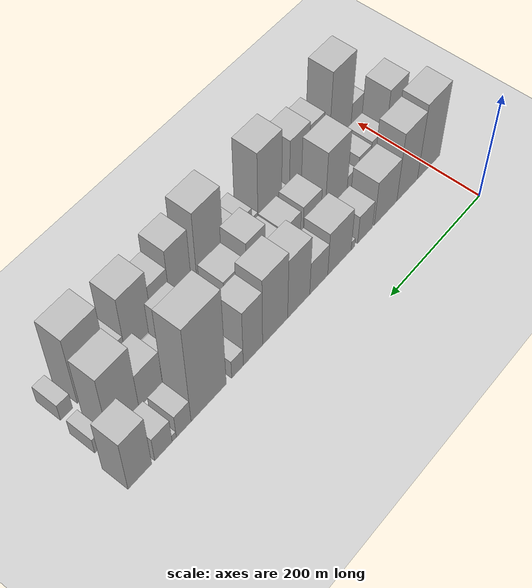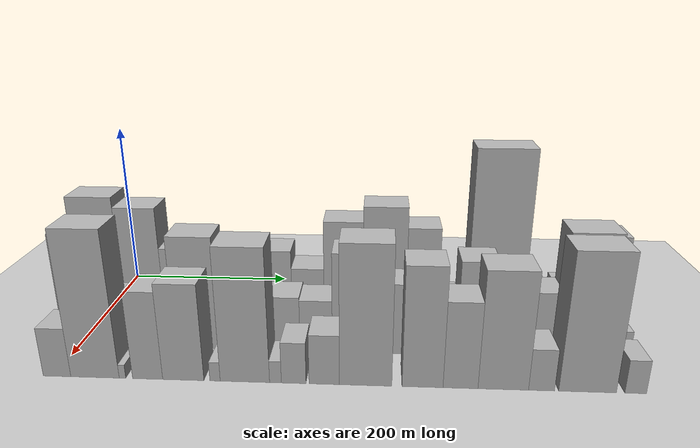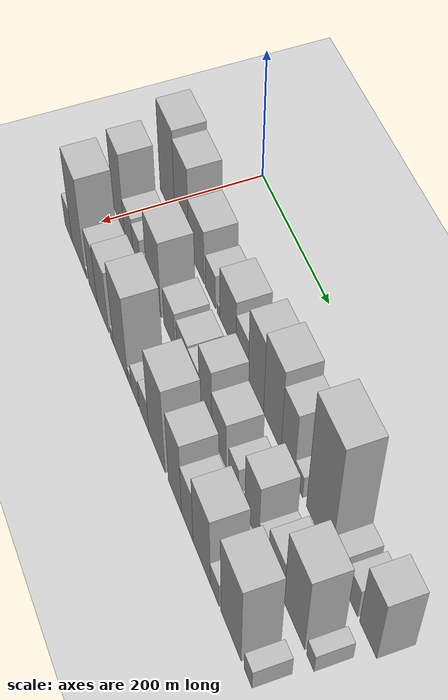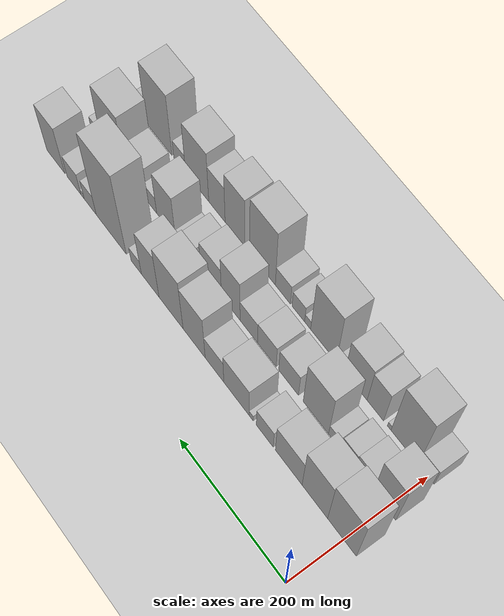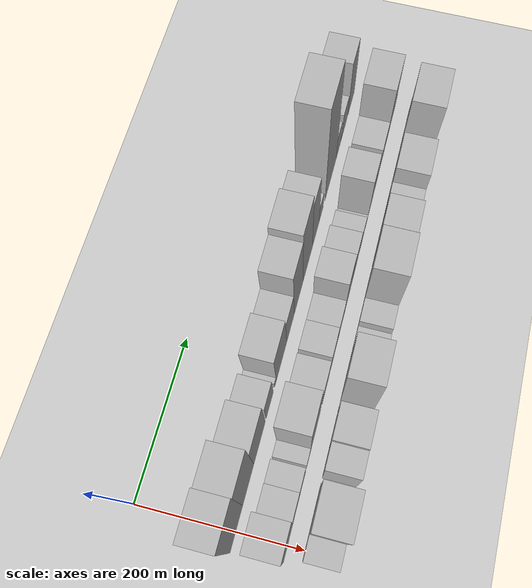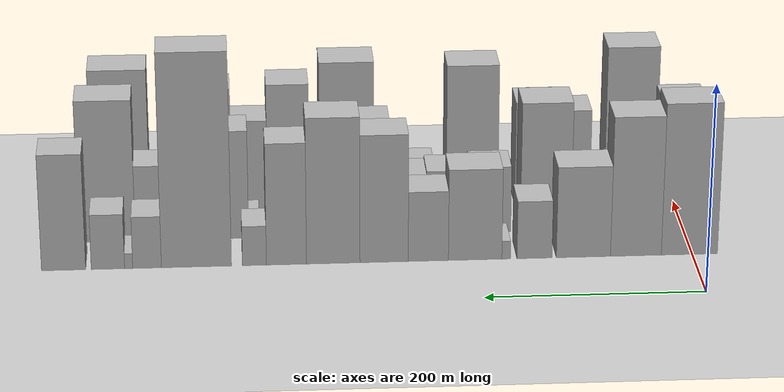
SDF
<sdf version="1.6">
 <world name="default">
  <include>
   <name>ground_plane_2</name>
   <uri>model://HANNAS_ground_plane</uri>
   <pose>100 0 0  0 0 0</pose>
  </include>
  <model name="building_16">
   <static>1</static>
   <pose>100.0000 3.0537 0 0.000000 0.000000 0.000000</pose>
   <link name="link">
    <pose>0 0 75.00 0 0 0</pose>
    <collision name="collision"><geometry><box><size>40.0000 52.0484 150.0000</size></box></geometry></collision>
    <visual name="visual">
     <cast_shadows>0</cast_shadows>
     <geometry><box><size>40.0000 52.0484 150.0000</size></box></geometry>
     <material>
      <script>
       <uri>model://HANNAS_wall/materials/scripts</uri>
       <uri>model://HANNAS_wall/materials/textures</uri>
       <name>vrc/HANNAS_wall</name>
      </script>
     </material>
    </visual>
   </link>
  </model>
  <model name="building_17">
   <static>1</static>
   <pose>100.0000 52.6405 0 0.000000 0.000000 0.000000</pose>
   <link name="link">
    <pose>0 0 69.00 0 0 0</pose>
    <collision name="collision"><geometry><box><size>40.0000 47.1252 138.0000</size></box></geometry></collision>
    <visual name="visual">
     <cast_shadows>0</cast_shadows>
     <geometry><box><size>40.0000 47.1252 138.0000</size></box></geometry>
     <material>
      <script>
       <uri>model://HANNAS_wall/materials/scripts</uri>
       <uri>model://HANNAS_wall/materials/textures</uri>
       <name>vrc/HANNAS_wall</name>
      </script>
     </material>
    </visual>
   </link>
  </model>
  <model name="building_18">
   <static>1</static>
   <pose>100.0000 101.2322 0 0.000000 0.000000 0.000000</pose>
   <link name="link">
    <pose>0 0 45.00 0 0 0</pose>
    <collision name="collision"><geometry><box><size>40.0000 50.0583 90.0000</size></box></geometry></collision>
    <visual name="visual">
     <cast_shadows>0</cast_shadows>
     <geometry><box><size>40.0000 50.0583 90.0000</size></box></geometry>
     <material>
      <script>
       <uri>model://HANNAS_wall/materials/scripts</uri>
       <uri>model://HANNAS_wall/materials/textures</uri>
       <name>vrc/HANNAS_wall</name>
      </script>
     </material>
    </visual>
   </link>
  </model>
  <model name="building_19">
   <static>1</static>
   <pose>100.0000 146.4236 0 0.000000 0.000000 0.000000</pose>
   <link name="link">
    <pose>0 0 28.50 0 0 0</pose>
    <collision name="collision"><geometry><box><size>40.0000 32.3245 57.0000</size></box></geometry></collision>
    <visual name="visual">
     <cast_shadows>0</cast_shadows>
     <geometry><box><size>40.0000 32.3245 57.0000</size></box></geometry>
     <material>
      <script>
       <uri>model://HANNAS_wall/materials/scripts</uri>
       <uri>model://HANNAS_wall/materials/textures</uri>
       <name>vrc/HANNAS_wall</name>
      </script>
     </material>
    </visual>
   </link>
  </model>
  <model name="building_20">
   <static>1</static>
   <pose>100.0000 172.5480 0 0.000000 0.000000 0.000000</pose>
   <link name="link">
    <pose>0 0 9.00 0 0 0</pose>
    <collision name="collision"><geometry><box><size>40.0000 7.9243 18.0000</size></box></geometry></collision>
    <visual name="visual">
     <cast_shadows>0</cast_shadows>
     <geometry><box><size>40.0000 7.9243 18.0000</size></box></geometry>
     <material>
      <script>
       <uri>model://HANNAS_wall/materials/scripts</uri>
       <uri>model://HANNAS_wall/materials/textures</uri>
       <name>vrc/HANNAS_wall</name>
      </script>
     </material>
    </visual>
   </link>
  </model>
  <model name="building_21">
   <static>1</static>
   <pose>100.0000 201.1346 0 0.000000 0.000000 0.000000</pose>
   <link name="link">
    <pose>0 0 45.00 0 0 0</pose>
    <collision name="collision"><geometry><box><size>40.0000 49.2489 90.0000</size></box></geometry></collision>
    <visual name="visual">
     <cast_shadows>0</cast_shadows>
     <geometry><box><size>40.0000 49.2489 90.0000</size></box></geometry>
     <material>
      <script>
       <uri>model://HANNAS_wall/materials/scripts</uri>
       <uri>model://HANNAS_wall/materials/textures</uri>
       <name>vrc/HANNAS_wall</name>
      </script>
     </material>
    </visual>
   </link>
  </model>
  <model name="building_22">
   <static>1</static>
   <pose>100.0000 244.1999 0 0.000000 0.000000 0.000000</pose>
   <link name="link">
    <pose>0 0 34.50 0 0 0</pose>
    <collision name="collision"><geometry><box><size>40.0000 36.8816 69.0000</size></box></geometry></collision>
    <visual name="visual">
     <cast_shadows>0</cast_shadows>
     <geometry><box><size>40.0000 36.8816 69.0000</size></box></geometry>
     <material>
      <script>
       <uri>model://HANNAS_wall/materials/scripts</uri>
       <uri>model://HANNAS_wall/materials/textures</uri>
       <name>vrc/HANNAS_wall</name>
      </script>
     </material>
    </visual>
   </link>
  </model>
  <model name="building_23">
   <static>1</static>
   <pose>100.0000 284.8170 0 0.000000 0.000000 0.000000</pose>
   <link name="link">
    <pose>0 0 63.00 0 0 0</pose>
    <collision name="collision"><geometry><box><size>40.0000 44.3525 126.0000</size></box></geometry></collision>
    <visual name="visual">
     <cast_shadows>0</cast_shadows>
     <geometry><box><size>40.0000 44.3525 126.0000</size></box></geometry>
     <material>
      <script>
       <uri>model://HANNAS_wall/materials/scripts</uri>
       <uri>model://HANNAS_wall/materials/textures</uri>
       <name>vrc/HANNAS_wall</name>
      </script>
     </material>
    </visual>
   </link>
  </model>
  <model name="building_24">
   <static>1</static>
   <pose>100.0000 331.4982 0 0.000000 0.000000 0.000000</pose>
   <link name="link">
    <pose>0 0 72.00 0 0 0</pose>
    <collision name="collision"><geometry><box><size>40.0000 49.0100 144.0000</size></box></geometry></collision>
    <visual name="visual">
     <cast_shadows>0</cast_shadows>
     <geometry><box><size>40.0000 49.0100 144.0000</size></box></geometry>
     <material>
      <script>
       <uri>model://HANNAS_wall/materials/scripts</uri>
       <uri>model://HANNAS_wall/materials/textures</uri>
       <name>vrc/HANNAS_wall</name>
      </script>
     </material>
    </visual>
   </link>
  </model>
  <model name="building_25">
   <static>1</static>
   <pose>100.0000 374.3059 0 0.000000 0.000000 0.000000</pose>
   <link name="link">
    <pose>0 0 60.00 0 0 0</pose>
    <collision name="collision"><geometry><box><size>40.0000 36.6054 120.0000</size></box></geometry></collision>
    <visual name="visual">
     <cast_shadows>0</cast_shadows>
     <geometry><box><size>40.0000 36.6054 120.0000</size></box></geometry>
     <material>
      <script>
       <uri>model://HANNAS_wall/materials/scripts</uri>
       <uri>model://HANNAS_wall/materials/textures</uri>
       <name>vrc/HANNAS_wall</name>
      </script>
     </material>
    </visual>
   </link>
  </model>
  <model name="building_26">
   <static>1</static>
   <pose>100.0000 403.5594 0 0.000000 0.000000 0.000000</pose>
   <link name="link">
    <pose>0 0 19.50 0 0 0</pose>
    <collision name="collision"><geometry><box><size>40.0000 21.9015 39.0000</size></box></geometry></collision>
    <visual name="visual">
     <cast_shadows>0</cast_shadows>
     <geometry><box><size>40.0000 21.9015 39.0000</size></box></geometry>
     <material>
      <script>
       <uri>model://HANNAS_wall/materials/scripts</uri>
       <uri>model://HANNAS_wall/materials/textures</uri>
       <name>vrc/HANNAS_wall</name>
      </script>
     </material>
    </visual>
   </link>
  </model>
  <model name="building_27">
   <static>1</static>
   <pose>100.0000 456.4815 0 0.000000 0.000000 0.000000</pose>
   <link name="link">
    <pose>0 0 105.00 0 0 0</pose>
    <collision name="collision"><geometry><box><size>40.0000 63.9427 210.0000</size></box></geometry></collision>
    <visual name="visual">
     <cast_shadows>0</cast_shadows>
     <geometry><box><size>40.0000 63.9427 210.0000</size></box></geometry>
     <material>
      <script>
       <uri>model://HANNAS_wall/materials/scripts</uri>
       <uri>model://HANNAS_wall/materials/textures</uri>
       <name>vrc/HANNAS_wall</name>
      </script>
     </material>
    </visual>
   </link>
  </model>
  <model name="building_28">
   <static>1</static>
   <pose>100.0000 501.5119 0 0.000000 0.000000 0.000000</pose>
   <link name="link">
    <pose>0 0 25.50 0 0 0</pose>
    <collision name="collision"><geometry><box><size>40.0000 26.1181 51.0000</size></box></geometry></collision>
    <visual name="visual">
     <cast_shadows>0</cast_shadows>
     <geometry><box><size>40.0000 26.1181 51.0000</size></box></geometry>
     <material>
      <script>
       <uri>model://HANNAS_wall/materials/scripts</uri>
       <uri>model://HANNAS_wall/materials/textures</uri>
       <name>vrc/HANNAS_wall</name>
      </script>
     </material>
    </visual>
   </link>
  </model>
  <model name="building_29">
   <static>1</static>
   <pose>100.0000 518.2382 0 0.000000 0.000000 0.000000</pose>
   <link name="link">
    <pose>0 0 7.50 0 0 0</pose>
    <collision name="collision"><geometry><box><size>40.0000 7.3345 15.0000</size></box></geometry></collision>
    <visual name="visual">
     <cast_shadows>0</cast_shadows>
     <geometry><box><size>40.0000 7.3345 15.0000</size></box></geometry>
     <material>
      <script>
       <uri>model://HANNAS_wall/materials/scripts</uri>
       <uri>model://HANNAS_wall/materials/textures</uri>
       <name>vrc/HANNAS_wall</name>
      </script>
     </material>
    </visual>
   </link>
  </model>
  <model name="building_30">
   <static>1</static>
   <pose>100.0000 537.0584 0 0.000000 0.000000 0.000000</pose>
   <link name="link">
    <pose>0 0 27.00 0 0 0</pose>
    <collision name="collision"><geometry><box><size>40.0000 30.3059 54.0000</size></box></geometry></collision>
    <visual name="visual">
     <cast_shadows>0</cast_shadows>
     <geometry><box><size>40.0000 30.3059 54.0000</size></box></geometry>
     <material>
      <script>
       <uri>model://HANNAS_wall/materials/scripts</uri>
       <uri>model://HANNAS_wall/materials/textures</uri>
       <name>vrc/HANNAS_wall</name>
      </script>
     </material>
    </visual>
   </link>
  </model>
  <model name="building_31">
   <static>1</static>
   <pose>100.0000 577.2599 0 0.000000 0.000000 0.000000</pose>
   <link name="link">
    <pose>0 0 57.00 0 0 0</pose>
    <collision name="collision"><geometry><box><size>40.0000 40.0972 114.0000</size></box></geometry></collision>
    <visual name="visual">
     <cast_shadows>0</cast_shadows>
     <geometry><box><size>40.0000 40.0972 114.0000</size></box></geometry>
     <material>
      <script>
       <uri>model://HANNAS_wall/materials/scripts</uri>
       <uri>model://HANNAS_wall/materials/textures</uri>
       <name>vrc/HANNAS_wall</name>
      </script>
     </material>
    </visual>
   </link>
  </model>
  <model name="building_50">
   <static>1</static>
   <pose>160.0000 2.9034 0 0.000000 0.000000 0.000000</pose>
   <link name="link">
    <pose>0 0 64.50 0 0 0</pose>
    <collision name="collision"><geometry><box><size>40.0000 40.4911 129.0000</size></box></geometry></collision>
    <visual name="visual">
     <cast_shadows>0</cast_shadows>
     <geometry><box><size>40.0000 40.4911 129.0000</size></box></geometry>
     <material>
      <script>
       <uri>model://HANNAS_wall/materials/scripts</uri>
       <uri>model://HANNAS_wall/materials/textures</uri>
       <name>vrc/HANNAS_wall</name>
      </script>
     </material>
    </visual>
   </link>
  </model>
  <model name="building_51">
   <static>1</static>
   <pose>160.0000 39.2276 0 0.000000 0.000000 0.000000</pose>
   <link name="link">
    <pose>0 0 28.50 0 0 0</pose>
    <collision name="collision"><geometry><box><size>40.0000 32.1573 57.0000</size></box></geometry></collision>
    <visual name="visual">
     <cast_shadows>0</cast_shadows>
     <geometry><box><size>40.0000 32.1573 57.0000</size></box></geometry>
     <material>
      <script>
       <uri>model://HANNAS_wall/materials/scripts</uri>
       <uri>model://HANNAS_wall/materials/textures</uri>
       <name>vrc/HANNAS_wall</name>
      </script>
     </material>
    </visual>
   </link>
  </model>
  <model name="building_52">
   <static>1</static>
   <pose>160.0000 68.7765 0 0.000000 0.000000 0.000000</pose>
   <link name="link">
    <pose>0 0 25.50 0 0 0</pose>
    <collision name="collision"><geometry><box><size>40.0000 26.9407 51.0000</size></box></geometry></collision>
    <visual name="visual">
     <cast_shadows>0</cast_shadows>
     <geometry><box><size>40.0000 26.9407 51.0000</size></box></geometry>
     <material>
      <script>
       <uri>model://HANNAS_wall/materials/scripts</uri>
       <uri>model://HANNAS_wall/materials/textures</uri>
       <name>vrc/HANNAS_wall</name>
      </script>
     </material>
    </visual>
   </link>
  </model>
  <model name="building_53">
   <static>1</static>
   <pose>160.0000 95.9330 0 0.000000 0.000000 0.000000</pose>
   <link name="link">
    <pose>0 0 16.50 0 0 0</pose>
    <collision name="collision"><geometry><box><size>40.0000 19.3723 33.0000</size></box></geometry></collision>
    <visual name="visual">
     <cast_shadows>0</cast_shadows>
     <geometry><box><size>40.0000 19.3723 33.0000</size></box></geometry>
     <material>
      <script>
       <uri>model://HANNAS_wall/materials/scripts</uri>
       <uri>model://HANNAS_wall/materials/textures</uri>
       <name>vrc/HANNAS_wall</name>
      </script>
     </material>
    </visual>
   </link>
  </model>
  <model name="building_54">
   <static>1</static>
   <pose>160.0000 129.4834 0 0.000000 0.000000 0.000000</pose>
   <link name="link">
    <pose>0 0 64.50 0 0 0</pose>
    <collision name="collision"><geometry><box><size>40.0000 47.7286 129.0000</size></box></geometry></collision>
    <visual name="visual">
     <cast_shadows>0</cast_shadows>
     <geometry><box><size>40.0000 47.7286 129.0000</size></box></geometry>
     <material>
      <script>
       <uri>model://HANNAS_wall/materials/scripts</uri>
       <uri>model://HANNAS_wall/materials/textures</uri>
       <name>vrc/HANNAS_wall</name>
      </script>
     </material>
    </visual>
   </link>
  </model>
  <model name="building_55">
   <static>1</static>
   <pose>160.0000 181.3222 0 0.000000 0.000000 0.000000</pose>
   <link name="link">
    <pose>0 0 33.00 0 0 0</pose>
    <collision name="collision"><geometry><box><size>40.0000 37.9489 66.0000</size></box></geometry></collision>
    <visual name="visual">
     <cast_shadows>0</cast_shadows>
     <geometry><box><size>40.0000 37.9489 66.0000</size></box></geometry>
     <material>
      <script>
       <uri>model://HANNAS_wall/materials/scripts</uri>
       <uri>model://HANNAS_wall/materials/textures</uri>
       <name>vrc/HANNAS_wall</name>
      </script>
     </material>
    </visual>
   </link>
  </model>
  <model name="building_56">
   <static>1</static>
   <pose>160.0000 223.4283 0 0.000000 0.000000 0.000000</pose>
   <link name="link">
    <pose>0 0 31.50 0 0 0</pose>
    <collision name="collision"><geometry><box><size>40.0000 36.2633 63.0000</size></box></geometry></collision>
    <visual name="visual">
     <cast_shadows>0</cast_shadows>
     <geometry><box><size>40.0000 36.2633 63.0000</size></box></geometry>
     <material>
      <script>
       <uri>model://HANNAS_wall/materials/scripts</uri>
       <uri>model://HANNAS_wall/materials/textures</uri>
       <name>vrc/HANNAS_wall</name>
      </script>
     </material>
    </visual>
   </link>
  </model>
  <model name="building_57">
   <static>1</static>
   <pose>160.0000 258.8193 0 0.000000 0.000000 0.000000</pose>
   <link name="link">
    <pose>0 0 30.00 0 0 0</pose>
    <collision name="collision"><geometry><box><size>40.0000 34.5187 60.0000</size></box></geometry></collision>
    <visual name="visual">
     <cast_shadows>0</cast_shadows>
     <geometry><box><size>40.0000 34.5187 60.0000</size></box></geometry>
     <material>
      <script>
       <uri>model://HANNAS_wall/materials/scripts</uri>
       <uri>model://HANNAS_wall/materials/textures</uri>
       <name>vrc/HANNAS_wall</name>
      </script>
     </material>
    </visual>
   </link>
  </model>
  <model name="building_58">
   <static>1</static>
   <pose>160.0000 294.6101 0 0.000000 0.000000 0.000000</pose>
   <link name="link">
    <pose>0 0 57.00 0 0 0</pose>
    <collision name="collision"><geometry><box><size>40.0000 37.0631 114.0000</size></box></geometry></collision>
    <visual name="visual">
     <cast_shadows>0</cast_shadows>
     <geometry><box><size>40.0000 37.0631 114.0000</size></box></geometry>
     <material>
      <script>
       <uri>model://HANNAS_wall/materials/scripts</uri>
       <uri>model://HANNAS_wall/materials/textures</uri>
       <name>vrc/HANNAS_wall</name>
      </script>
     </material>
    </visual>
   </link>
  </model>
  <model name="building_59">
   <static>1</static>
   <pose>160.0000 334.3508 0 0.000000 0.000000 0.000000</pose>
   <link name="link">
    <pose>0 0 40.50 0 0 0</pose>
    <collision name="collision"><geometry><box><size>40.0000 42.4183 81.0000</size></box></geometry></collision>
    <visual name="visual">
     <cast_shadows>0</cast_shadows>
     <geometry><box><size>40.0000 42.4183 81.0000</size></box></geometry>
     <material>
      <script>
       <uri>model://HANNAS_wall/materials/scripts</uri>
       <uri>model://HANNAS_wall/materials/textures</uri>
       <name>vrc/HANNAS_wall</name>
      </script>
     </material>
    </visual>
   </link>
  </model>
  <model name="building_60">
   <static>1</static>
   <pose>160.0000 376.4585 0 0.000000 0.000000 0.000000</pose>
   <link name="link">
    <pose>0 0 25.50 0 0 0</pose>
    <collision name="collision"><geometry><box><size>40.0000 27.7969 51.0000</size></box></geometry></collision>
    <visual name="visual">
     <cast_shadows>0</cast_shadows>
     <geometry><box><size>40.0000 27.7969 51.0000</size></box></geometry>
     <material>
      <script>
       <uri>model://HANNAS_wall/materials/scripts</uri>
       <uri>model://HANNAS_wall/materials/textures</uri>
       <name>vrc/HANNAS_wall</name>
      </script>
     </material>
    </visual>
   </link>
  </model>
  <model name="building_61">
   <static>1</static>
   <pose>160.0000 402.5462 0 0.000000 0.000000 0.000000</pose>
   <link name="link">
    <pose>0 0 10.50 0 0 0</pose>
    <collision name="collision"><geometry><box><size>40.0000 10.3786 21.0000</size></box></geometry></collision>
    <visual name="visual">
     <cast_shadows>0</cast_shadows>
     <geometry><box><size>40.0000 10.3786 21.0000</size></box></geometry>
     <material>
      <script>
       <uri>model://HANNAS_wall/materials/scripts</uri>
       <uri>model://HANNAS_wall/materials/textures</uri>
       <name>vrc/HANNAS_wall</name>
      </script>
     </material>
    </visual>
   </link>
  </model>
  <model name="building_62">
   <static>1</static>
   <pose>160.0000 427.2625 0 0.000000 0.000000 0.000000</pose>
   <link name="link">
    <pose>0 0 54.00 0 0 0</pose>
    <collision name="collision"><geometry><box><size>40.0000 39.0540 108.0000</size></box></geometry></collision>
    <visual name="visual">
     <cast_shadows>0</cast_shadows>
     <geometry><box><size>40.0000 39.0540 108.0000</size></box></geometry>
     <material>
      <script>
       <uri>model://HANNAS_wall/materials/scripts</uri>
       <uri>model://HANNAS_wall/materials/textures</uri>
       <name>vrc/HANNAS_wall</name>
      </script>
     </material>
    </visual>
   </link>
  </model>
  <model name="building_63">
   <static>1</static>
   <pose>160.0000 459.2107 0 0.000000 0.000000 0.000000</pose>
   <link name="link">
    <pose>0 0 21.00 0 0 0</pose>
    <collision name="collision"><geometry><box><size>40.0000 24.8425 42.0000</size></box></geometry></collision>
    <visual name="visual">
     <cast_shadows>0</cast_shadows>
     <geometry><box><size>40.0000 24.8425 42.0000</size></box></geometry>
     <material>
      <script>
       <uri>model://HANNAS_wall/materials/scripts</uri>
       <uri>model://HANNAS_wall/materials/textures</uri>
       <name>vrc/HANNAS_wall</name>
      </script>
     </material>
    </visual>
   </link>
  </model>
  <model name="building_64">
   <static>1</static>
   <pose>160.0000 492.3948 0 0.000000 0.000000 0.000000</pose>
   <link name="link">
    <pose>0 0 37.50 0 0 0</pose>
    <collision name="collision"><geometry><box><size>40.0000 41.5257 75.0000</size></box></geometry></collision>
    <visual name="visual">
     <cast_shadows>0</cast_shadows>
     <geometry><box><size>40.0000 41.5257 75.0000</size></box></geometry>
     <material>
      <script>
       <uri>model://HANNAS_wall/materials/scripts</uri>
       <uri>model://HANNAS_wall/materials/textures</uri>
       <name>vrc/HANNAS_wall</name>
      </script>
     </material>
    </visual>
   </link>
  </model>
  <model name="building_65">
   <static>1</static>
   <pose>160.0000 539.2618 0 0.000000 0.000000 0.000000</pose>
   <link name="link">
    <pose>0 0 70.50 0 0 0</pose>
    <collision name="collision"><geometry><box><size>40.0000 52.2082 141.0000</size></box></geometry></collision>
    <visual name="visual">
     <cast_shadows>0</cast_shadows>
     <geometry><box><size>40.0000 52.2082 141.0000</size></box></geometry>
     <material>
      <script>
       <uri>model://HANNAS_wall/materials/scripts</uri>
       <uri>model://HANNAS_wall/materials/textures</uri>
       <name>vrc/HANNAS_wall</name>
      </script>
     </material>
    </visual>
   </link>
  </model>
  <model name="building_66">
   <static>1</static>
   <pose>160.0000 579.4118 0 0.000000 0.000000 0.000000</pose>
   <link name="link">
    <pose>0 0 16.50 0 0 0</pose>
    <collision name="collision"><geometry><box><size>40.0000 18.0917 33.0000</size></box></geometry></collision>
    <visual name="visual">
     <cast_shadows>0</cast_shadows>
     <geometry><box><size>40.0000 18.0917 33.0000</size></box></geometry>
     <material>
      <script>
       <uri>model://HANNAS_wall/materials/scripts</uri>
       <uri>model://HANNAS_wall/materials/textures</uri>
       <name>vrc/HANNAS_wall</name>
      </script>
     </material>
    </visual>
   </link>
  </model>
  <model name="building_84">
   <static>1</static>
   <pose>220.0000 3.2790 0 0.000000 0.000000 0.000000</pose>
   <link name="link">
    <pose>0 0 27.00 0 0 0</pose>
    <collision name="collision"><geometry><box><size>40.0000 28.3241 54.0000</size></box></geometry></collision>
    <visual name="visual">
     <cast_shadows>0</cast_shadows>
     <geometry><box><size>40.0000 28.3241 54.0000</size></box></geometry>
     <material>
      <script>
       <uri>model://HANNAS_wall/materials/scripts</uri>
       <uri>model://HANNAS_wall/materials/textures</uri>
       <name>vrc/HANNAS_wall</name>
      </script>
     </material>
    </visual>
   </link>
  </model>
  <model name="building_85">
   <static>1</static>
   <pose>220.0000 42.1496 0 0.000000 0.000000 0.000000</pose>
   <link name="link">
    <pose>0 0 79.50 0 0 0</pose>
    <collision name="collision"><geometry><box><size>40.0000 49.4169 159.0000</size></box></geometry></collision>
    <visual name="visual">
     <cast_shadows>0</cast_shadows>
     <geometry><box><size>40.0000 49.4169 159.0000</size></box></geometry>
     <material>
      <script>
       <uri>model://HANNAS_wall/materials/scripts</uri>
       <uri>model://HANNAS_wall/materials/textures</uri>
       <name>vrc/HANNAS_wall</name>
      </script>
     </material>
    </visual>
   </link>
  </model>
  <model name="building_86">
   <static>1</static>
   <pose>220.0000 70.1875 0 0.000000 0.000000 0.000000</pose>
   <link name="link">
    <pose>0 0 7.50 0 0 0</pose>
    <collision name="collision"><geometry><box><size>40.0000 6.6591 15.0000</size></box></geometry></collision>
    <visual name="visual">
     <cast_shadows>0</cast_shadows>
     <geometry><box><size>40.0000 6.6591 15.0000</size></box></geometry>
     <material>
      <script>
       <uri>model://HANNAS_wall/materials/scripts</uri>
       <uri>model://HANNAS_wall/materials/textures</uri>
       <name>vrc/HANNAS_wall</name>
      </script>
     </material>
    </visual>
   </link>
  </model>
  <model name="building_87">
   <static>1</static>
   <pose>220.0000 95.7562 0 0.000000 0.000000 0.000000</pose>
   <link name="link">
    <pose>0 0 48.00 0 0 0</pose>
    <collision name="collision"><geometry><box><size>40.0000 30.4783 96.0000</size></box></geometry></collision>
    <visual name="visual">
     <cast_shadows>0</cast_shadows>
     <geometry><box><size>40.0000 30.4783 96.0000</size></box></geometry>
     <material>
      <script>
       <uri>model://HANNAS_wall/materials/scripts</uri>
       <uri>model://HANNAS_wall/materials/textures</uri>
       <name>vrc/HANNAS_wall</name>
      </script>
     </material>
    </visual>
   </link>
  </model>
  <model name="building_88">
   <static>1</static>
   <pose>220.0000 131.7616 0 0.000000 0.000000 0.000000</pose>
   <link name="link">
    <pose>0 0 52.50 0 0 0</pose>
    <collision name="collision"><geometry><box><size>40.0000 41.5324 105.0000</size></box></geometry></collision>
    <visual name="visual">
     <cast_shadows>0</cast_shadows>
     <geometry><box><size>40.0000 41.5324 105.0000</size></box></geometry>
     <material>
      <script>
       <uri>model://HANNAS_wall/materials/scripts</uri>
       <uri>model://HANNAS_wall/materials/textures</uri>
       <name>vrc/HANNAS_wall</name>
      </script>
     </material>
    </visual>
   </link>
  </model>
  <model name="building_89">
   <static>1</static>
   <pose>220.0000 163.7137 0 0.000000 0.000000 0.000000</pose>
   <link name="link">
    <pose>0 0 10.50 0 0 0</pose>
    <collision name="collision"><geometry><box><size>40.0000 10.3719 21.0000</size></box></geometry></collision>
    <visual name="visual">
     <cast_shadows>0</cast_shadows>
     <geometry><box><size>40.0000 10.3719 21.0000</size></box></geometry>
     <material>
      <script>
       <uri>model://HANNAS_wall/materials/scripts</uri>
       <uri>model://HANNAS_wall/materials/textures</uri>
       <name>vrc/HANNAS_wall</name>
      </script>
     </material>
    </visual>
   </link>
  </model>
  <model name="building_90">
   <static>1</static>
   <pose>220.0000 193.5635 0 0.000000 0.000000 0.000000</pose>
   <link name="link">
    <pose>0 0 72.00 0 0 0</pose>
    <collision name="collision"><geometry><box><size>40.0000 49.3276 144.0000</size></box></geometry></collision>
    <visual name="visual">
     <cast_shadows>0</cast_shadows>
     <geometry><box><size>40.0000 49.3276 144.0000</size></box></geometry>
     <material>
      <script>
       <uri>model://HANNAS_wall/materials/scripts</uri>
       <uri>model://HANNAS_wall/materials/textures</uri>
       <name>vrc/HANNAS_wall</name>
      </script>
     </material>
    </visual>
   </link>
  </model>
  <model name="building_91">
   <static>1</static>
   <pose>220.0000 224.0850 0 0.000000 0.000000 0.000000</pose>
   <link name="link">
    <pose>0 0 12.00 0 0 0</pose>
    <collision name="collision"><geometry><box><size>40.0000 11.7154 24.0000</size></box></geometry></collision>
    <visual name="visual">
     <cast_shadows>0</cast_shadows>
     <geometry><box><size>40.0000 11.7154 24.0000</size></box></geometry>
     <material>
      <script>
       <uri>model://HANNAS_wall/materials/scripts</uri>
       <uri>model://HANNAS_wall/materials/textures</uri>
       <name>vrc/HANNAS_wall</name>
      </script>
     </material>
    </visual>
   </link>
  </model>
  <model name="building_92">
   <static>1</static>
   <pose>220.0000 242.1766 0 0.000000 0.000000 0.000000</pose>
   <link name="link">
    <pose>0 0 22.50 0 0 0</pose>
    <collision name="collision"><geometry><box><size>40.0000 24.4677 45.0000</size></box></geometry></collision>
    <visual name="visual">
     <cast_shadows>0</cast_shadows>
     <geometry><box><size>40.0000 24.4677 45.0000</size></box></geometry>
     <material>
      <script>
       <uri>model://HANNAS_wall/materials/scripts</uri>
       <uri>model://HANNAS_wall/materials/textures</uri>
       <name>vrc/HANNAS_wall</name>
      </script>
     </material>
    </visual>
   </link>
  </model>
  <model name="building_93">
   <static>1</static>
   <pose>220.0000 272.3512 0 0.000000 0.000000 0.000000</pose>
   <link name="link">
    <pose>0 0 27.00 0 0 0</pose>
    <collision name="collision"><geometry><box><size>40.0000 29.8816 54.0000</size></box></geometry></collision>
    <visual name="visual">
     <cast_shadows>0</cast_shadows>
     <geometry><box><size>40.0000 29.8816 54.0000</size></box></geometry>
     <material>
      <script>
       <uri>model://HANNAS_wall/materials/scripts</uri>
       <uri>model://HANNAS_wall/materials/textures</uri>
       <name>vrc/HANNAS_wall</name>
      </script>
     </material>
    </visual>
   </link>
  </model>
  <model name="building_94">
   <static>1</static>
   <pose>220.0000 313.0507 0 0.000000 0.000000 0.000000</pose>
   <link name="link">
    <pose>0 0 75.00 0 0 0</pose>
    <collision name="collision"><geometry><box><size>40.0000 51.5173 150.0000</size></box></geometry></collision>
    <visual name="visual">
     <cast_shadows>0</cast_shadows>
     <geometry><box><size>40.0000 51.5173 150.0000</size></box></geometry>
     <material>
      <script>
       <uri>model://HANNAS_wall/materials/scripts</uri>
       <uri>model://HANNAS_wall/materials/textures</uri>
       <name>vrc/HANNAS_wall</name>
      </script>
     </material>
    </visual>
   </link>
  </model>
  <model name="building_95">
   <static>1</static>
   <pose>220.0000 368.7399 0 0.000000 0.000000 0.000000</pose>
   <link name="link">
    <pose>0 0 64.50 0 0 0</pose>
    <collision name="collision"><geometry><box><size>40.0000 39.8611 129.0000</size></box></geometry></collision>
    <visual name="visual">
     <cast_shadows>0</cast_shadows>
     <geometry><box><size>40.0000 39.8611 129.0000</size></box></geometry>
     <material>
      <script>
       <uri>model://HANNAS_wall/materials/scripts</uri>
       <uri>model://HANNAS_wall/materials/textures</uri>
       <name>vrc/HANNAS_wall</name>
      </script>
     </material>
    </visual>
   </link>
  </model>
  <model name="building_96">
   <static>1</static>
   <pose>220.0000 405.5940 0 0.000000 0.000000 0.000000</pose>
   <link name="link">
    <pose>0 0 46.50 0 0 0</pose>
    <collision name="collision"><geometry><box><size>40.0000 33.8470 93.0000</size></box></geometry></collision>
    <visual name="visual">
     <cast_shadows>0</cast_shadows>
     <geometry><box><size>40.0000 33.8470 93.0000</size></box></geometry>
     <material>
      <script>
       <uri>model://HANNAS_wall/materials/scripts</uri>
       <uri>model://HANNAS_wall/materials/textures</uri>
       <name>vrc/HANNAS_wall</name>
      </script>
     </material>
    </visual>
   </link>
  </model>
  <model name="building_97">
   <static>1</static>
   <pose>220.0000 446.8417 0 0.000000 0.000000 0.000000</pose>
   <link name="link">
    <pose>0 0 63.00 0 0 0</pose>
    <collision name="collision"><geometry><box><size>40.0000 48.6485 126.0000</size></box></geometry></collision>
    <visual name="visual">
     <cast_shadows>0</cast_shadows>
     <geometry><box><size>40.0000 48.6485 126.0000</size></box></geometry>
     <material>
      <script>
       <uri>model://HANNAS_wall/materials/scripts</uri>
       <uri>model://HANNAS_wall/materials/textures</uri>
       <name>vrc/HANNAS_wall</name>
      </script>
     </material>
    </visual>
   </link>
  </model>
  <model name="building_98">
   <static>1</static>
   <pose>220.0000 483.6220 0 0.000000 0.000000 0.000000</pose>
   <link name="link">
    <pose>0 0 22.50 0 0 0</pose>
    <collision name="collision"><geometry><box><size>40.0000 24.9123 45.0000</size></box></geometry></collision>
    <visual name="visual">
     <cast_shadows>0</cast_shadows>
     <geometry><box><size>40.0000 24.9123 45.0000</size></box></geometry>
     <material>
      <script>
       <uri>model://HANNAS_wall/materials/scripts</uri>
       <uri>model://HANNAS_wall/materials/textures</uri>
       <name>vrc/HANNAS_wall</name>
      </script>
     </material>
    </visual>
   </link>
  </model>
  <model name="building_99">
   <static>1</static>
   <pose>220.0000 527.5030 0 0.000000 0.000000 0.000000</pose>
   <link name="link">
    <pose>0 0 73.50 0 0 0</pose>
    <collision name="collision"><geometry><box><size>40.0000 54.8497 147.0000</size></box></geometry></collision>
    <visual name="visual">
     <cast_shadows>0</cast_shadows>
     <geometry><box><size>40.0000 54.8497 147.0000</size></box></geometry>
     <material>
      <script>
       <uri>model://HANNAS_wall/materials/scripts</uri>
       <uri>model://HANNAS_wall/materials/textures</uri>
       <name>vrc/HANNAS_wall</name>
      </script>
     </material>
    </visual>
   </link>
  </model>
  <model name="building_100">
   <static>1</static>
   <pose>220.0000 573.1402 0 0.000000 0.000000 0.000000</pose>
   <link name="link">
    <pose>0 0 18.00 0 0 0</pose>
    <collision name="collision"><geometry><box><size>40.0000 20.4248 36.0000</size></box></geometry></collision>
    <visual name="visual">
     <cast_shadows>0</cast_shadows>
     <geometry><box><size>40.0000 20.4248 36.0000</size></box></geometry>
     <material>
      <script>
       <uri>model://HANNAS_wall/materials/scripts</uri>
       <uri>model://HANNAS_wall/materials/textures</uri>
       <name>vrc/HANNAS_wall</name>
      </script>
     </material>
    </visual>
   </link>
  </model>
 </world>
</sdf>
